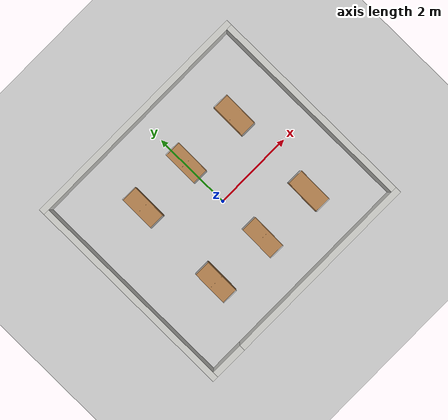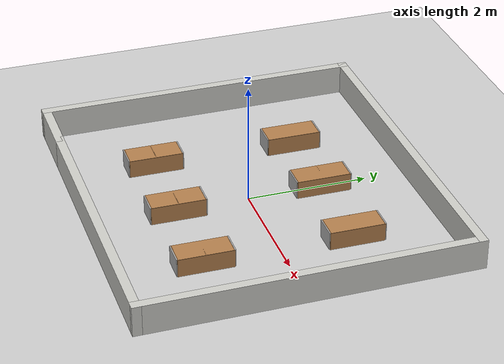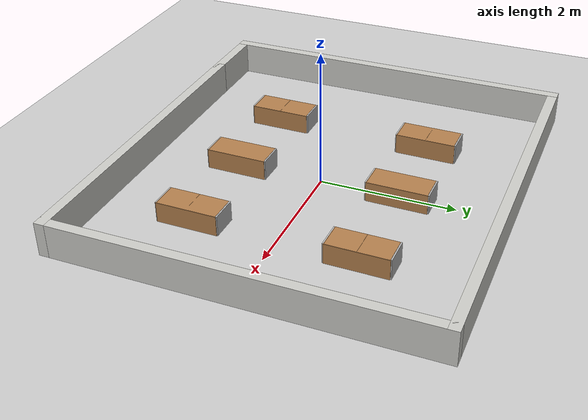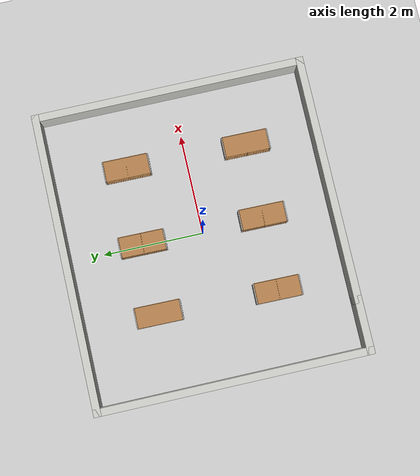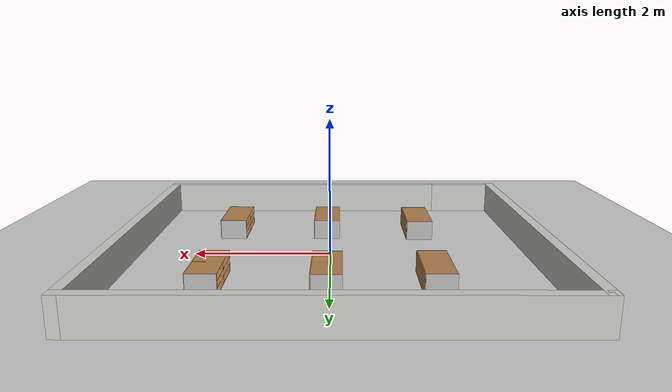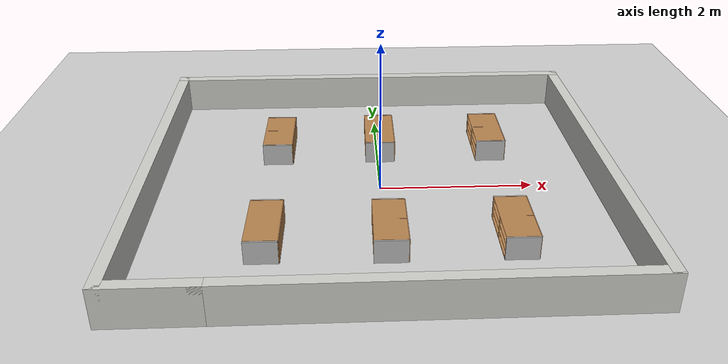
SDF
<sdf version="1.6">
 <world name="default">
  <light name="sun" type="directional">
   <pose>0 0 10 0 -0 0</pose>
   <diffuse>0.8 0.8 0.8 1</diffuse>
   <specular>0.2 0.2 0.2 1</specular>
   <attenuation>
    <range>1000</range>
    <constant>0.9</constant>
    <linear>0.01</linear>
    <quadratic>0.001</quadratic>
   </attenuation>
   <direction>-0.5 0.1 -0.9</direction>
  </light>
  <gravity>0 0 -9.8</gravity>
  <magnetic_field>6e-06 2.3e-05 -4.2e-05</magnetic_field>
  <atmosphere type="adiabatic"/>
  <physics name="default_physics" default="0" type="ode">
   <max_step_size>0.001</max_step_size>
   <real_time_factor>1</real_time_factor>
   <real_time_update_rate>1000</real_time_update_rate>
  </physics>
  <scene><ambient>0.4 0.4 0.4 1</ambient><background>0.7 0.7 0.7 1</background><shadows>1</shadows></scene>
  <spherical_coordinates>
   <surface_model>EARTH_WGS84</surface_model>
   <latitude_deg>0</latitude_deg>
   <longitude_deg>0</longitude_deg>
   <elevation>0</elevation>
   <heading_deg>0</heading_deg>
  </spherical_coordinates>
  <model name="ground_plane">
   <static>1</static>
   <link name="link">
    <collision name="collision">
     <geometry><plane><normal>0 0 1</normal><size>5.5 5.5</size></plane></geometry>
     <surface>
      <contact><collide_bitmask>65535</collide_bitmask></contact>
      <friction><ode><mu>100</mu><mu2>50</mu2></ode></friction>
     </surface>
    </collision>
    <visual name="visual">
     <cast_shadows>0</cast_shadows>
     <geometry><plane><normal>0 0 1</normal><size>5.5 5.5</size></plane></geometry>
     <material><script><uri>file://course.material</uri><name>course</name></script></material>
    </visual>
   </link>
   <pose>0.012778 0.030832 0 0 -0 0</pose>
  </model>
  <model name="Untitled">
   <pose>-0.039 0.053 0 0 -0 0</pose>
   <link name="Wall_10">
    <collision name="Wall_10_Collision">
     <geometry><box><size>5 0.15 0.5</size></box></geometry>
     <pose>0 0 0.25 0 -0 0</pose>
    </collision>
    <visual name="Wall_10_Visual">
     <pose>0 0 0.25 0 -0 0</pose>
     <geometry><box><size>5 0.15 0.5</size></box></geometry>
     <material>
      <script><uri>file://media/materials/scripts/gazebo.material</uri><name>Gazebo/CeilingTiled</name></script>
      <ambient>1 1 1 1</ambient>
     </material>
     <meta><layer>0</layer></meta>
    </visual>
    <pose>0.5 -2.675 0 0 -0 0</pose>
   </link>
   <link name="Wall_12">
    <collision name="Wall_12_Collision">
     <geometry><box><size>6 0.15 0.5</size></box></geometry>
     <pose>0 0 0.25 0 -0 0</pose>
    </collision>
    <visual name="Wall_12_Visual">
     <pose>0 0 0.25 0 -0 0</pose>
     <geometry><box><size>6 0.15 0.5</size></box></geometry>
     <material>
      <script><uri>file://media/materials/scripts/gazebo.material</uri><name>Gazebo/CeilingTiled</name></script>
      <ambient>1 1 1 1</ambient>
     </material>
     <meta><layer>0</layer></meta>
    </visual>
    <pose>0 2.675 0 0 -0 3.14159</pose>
   </link>
   <link name="Wall_13">
    <collision name="Wall_13_Collision">
     <geometry><box><size>5.5 0.15 0.5</size></box></geometry>
     <pose>0 0 0.25 0 -0 0</pose>
    </collision>
    <visual name="Wall_13_Visual">
     <pose>0 0 0.25 0 -0 0</pose>
     <geometry><box><size>5.5 0.15 0.5</size></box></geometry>
     <material>
      <script><uri>file://media/materials/scripts/gazebo.material</uri><name>Gazebo/CeilingTiled</name></script>
      <ambient>1 1 1 1</ambient>
     </material>
     <meta><layer>0</layer></meta>
    </visual>
    <pose>-2.925 0 0 0 0 -1.5708</pose>
   </link>
   <link name="Wall_14">
    <collision name="Wall_14_Collision">
     <geometry><box><size>1.15 0.15 0.5</size></box></geometry>
     <pose>0 0 0.25 0 -0 0</pose>
    </collision>
    <visual name="Wall_14_Visual">
     <pose>0 0 0.25 0 -0 0</pose>
     <geometry><box><size>1.15 0.15 0.5</size></box></geometry>
     <material>
      <script><uri>file://media/materials/scripts/gazebo.material</uri><name>Gazebo/CeilingTiled</name></script>
      <ambient>1 1 1 1</ambient>
     </material>
     <meta><layer>0</layer></meta>
    </visual>
    <pose>-2.425 -2.675 0 0 -0 0</pose>
   </link>
   <link name="Wall_16">
    <collision name="Wall_16_Collision">
     <geometry><box><size>5.5 0.15 0.5</size></box></geometry>
     <pose>0 0 0.25 0 -0 0</pose>
    </collision>
    <visual name="Wall_16_Visual">
     <pose>0 0 0.25 0 -0 0</pose>
     <geometry><box><size>5.5 0.15 0.5</size></box></geometry>
     <material>
      <script><uri>file://media/materials/scripts/gazebo.material</uri><name>Gazebo/CeilingTiled</name></script>
      <ambient>1 1 1 1</ambient>
     </material>
     <meta><layer>0</layer></meta>
    </visual>
    <pose>2.925 0 0 0 0 -1.5708</pose>
   </link>
   <static>1</static>
  </model>
  <model name="bookshelf_i">
   <static>1</static>
   <link name="link">
    <inertial><mass>1</mass></inertial>
    <collision name="back">
     <pose>0 0.01 0.15 0 -0 0</pose>
     <geometry><box><size>0.9 0.01 0.3</size></box></geometry>
    </collision>
    <visual name="visual1">
     <pose>0 0.01 0.15 0 -0 0</pose>
     <geometry><box><size>0.9 0.01 0.3</size></box></geometry>
     <material>
      <script><uri>file://media/materials/scripts/gazebo.material</uri><name>Gazebo/Wood</name></script>
     </material>
    </visual>
    <collision name="left_side">
     <pose>0.455 -0.195 0.15 0 -0 0</pose>
     <geometry><box><size>0.02 0.4 0.3</size></box></geometry>
    </collision>
    <visual name="visual2">
     <pose>0.455 -0.195 0.15 0 -0 0</pose>
     <geometry><box><size>0.02 0.4 0.3</size></box></geometry>
     <material>
      <script>
       <uri>model://bookshelf_i/materials11/scripts</uri>
       <uri>model://bookshelf_i/materials11/textures</uri>
       <name>BookShelf/11</name>
      </script>
     </material>
    </visual>
    <collision name="left_side_inner">
     <pose>0.4425 -0.195 0.15 0 -0 0</pose>
     <geometry><box><size>0.005 0.4 0.3</size></box></geometry>
    </collision>
    <visual name="visual2_inner">
     <pose>0.4425 -0.195 0.15 0 -0 0</pose>
     <geometry><box><size>0.005 0.4 0.3</size></box></geometry>
     <material>
      <script><uri>file://media/materials/scripts/gazebo.material</uri><name>Gazebo/Wood</name></script>
     </material>
    </visual>
    <collision name="right_side">
     <pose>-0.455 -0.195 0.15 0 -0 0</pose>
     <geometry><box><size>0.02 0.4 0.3</size></box></geometry>
    </collision>
    <visual name="visual3">
     <pose>-0.455 -0.195 0.15 0 -0 0</pose>
     <geometry><box><size>0.02 0.4 0.3</size></box></geometry>
     <material>
      <script>
       <uri>model://bookshelf_i/materials11/scripts</uri>
       <uri>model://bookshelf_i/materials11/textures</uri>
       <name>BookShelf/11</name>
      </script>
     </material>
    </visual>
    <collision name="right_side_inner">
     <pose>-0.4425 -0.195 0.15 0 -0 0</pose>
     <geometry><box><size>0.005 0.4 0.3</size></box></geometry>
    </collision>
    <visual name="visual3_inner">
     <pose>-0.4425 -0.195 0.15 0 -0 0</pose>
     <geometry><box><size>0.005 0.4 0.3</size></box></geometry>
     <material>
      <script><uri>file://media/materials/scripts/gazebo.material</uri><name>Gazebo/Wood</name></script>
     </material>
    </visual>
    <collision name="right_side_center">
     <pose>-0 -0.195 0.15 0 -0 0</pose>
     <geometry><box><size>0.005 0.4 0.3</size></box></geometry>
    </collision>
    <visual name="visual3_center">
     <pose>-0 -0.195 0.15 0 -0 0</pose>
     <geometry><box><size>0.005 0.4 0.3</size></box></geometry>
     <material>
      <script><uri>file://media/materials/scripts/gazebo.material</uri><name>Gazebo/Wood</name></script>
     </material>
    </visual>
    <collision name="bottom">
     <pose>0 -0.195 0.0075 0 -0 0</pose>
     <geometry><box><size>0.88 0.4 0.015</size></box></geometry>
    </collision>
    <visual name="visual4">
     <pose>0 -0.195 0.0075 0 -0 0</pose>
     <geometry><box><size>0.88 0.4 0.015</size></box></geometry>
     <material>
      <script><uri>file://media/materials/scripts/gazebo.material</uri><name>Gazebo/Wood</name></script>
     </material>
    </visual>
    <collision name="top">
     <pose>0 -0.195 0.2975 0 -0 0</pose>
     <geometry><box><size>0.88 0.4 0.005</size></box></geometry>
    </collision>
    <visual name="visual5">
     <pose>0 -0.195 0.2975 0 -0 0</pose>
     <geometry><box><size>0.88 0.4 0.005</size></box></geometry>
     <material>
      <script><uri>file://media/materials/scripts/gazebo.material</uri><name>Gazebo/Wood</name></script>
     </material>
    </visual>
    <collision name="low_shelf">
     <pose>0 -0.195 0.1075 0 -0 0</pose>
     <geometry><box><size>0.88 0.4 0.005</size></box></geometry>
    </collision>
    <visual name="visual6">
     <pose>0 -0.195 0.1075 0 -0 0</pose>
     <geometry><box><size>0.88 0.4 0.005</size></box></geometry>
     <material>
      <script><uri>file://media/materials/scripts/gazebo.material</uri><name>Gazebo/Wood</name></script>
     </material>
    </visual>
    <collision name="high_shelf">
     <pose>0 -0.195 0.2 0 -0 0</pose>
     <geometry><box><size>0.88 0.4 0.005</size></box></geometry>
    </collision>
    <visual name="visual7">
     <pose>0 -0.195 0.2 0 -0 0</pose>
     <geometry><box><size>0.88 0.4 0.005</size></box></geometry>
     <material>
      <script><uri>file://media/materials/scripts/gazebo.material</uri><name>Gazebo/Wood</name></script>
     </material>
    </visual>
   </link>
   <pose>0.228048 1.20462 0 0 0 -1.58202</pose>
  </model>
  <model name="bookshelf_i_clone">
   <static>1</static>
   <link name="link">
    <inertial><mass>1</mass></inertial>
    <collision name="back">
     <pose>0 0.01 0.15 0 -0 0</pose>
     <geometry><box><size>0.9 0.01 0.3</size></box></geometry>
    </collision>
    <visual name="visual1">
     <pose>0 0.01 0.15 0 -0 0</pose>
     <geometry><box><size>0.9 0.01 0.3</size></box></geometry>
     <material>
      <script><uri>file://media/materials/scripts/gazebo.material</uri><name>Gazebo/Wood</name></script>
     </material>
    </visual>
    <collision name="left_side">
     <pose>0.455 -0.195 0.15 0 -0 0</pose>
     <geometry><box><size>0.02 0.4 0.3</size></box></geometry>
    </collision>
    <visual name="visual2">
     <pose>0.455 -0.195 0.15 0 -0 0</pose>
     <geometry><box><size>0.02 0.4 0.3</size></box></geometry>
     <material>
      <script>
       <uri>model://bookshelf_i/materials11/scripts</uri>
       <uri>model://bookshelf_i/materials11/textures</uri>
       <name>BookShelf/11</name>
      </script>
     </material>
    </visual>
    <collision name="left_side_inner">
     <pose>0.4425 -0.195 0.15 0 -0 0</pose>
     <geometry><box><size>0.005 0.4 0.3</size></box></geometry>
    </collision>
    <visual name="visual2_inner">
     <pose>0.4425 -0.195 0.15 0 -0 0</pose>
     <geometry><box><size>0.005 0.4 0.3</size></box></geometry>
     <material>
      <script><uri>file://media/materials/scripts/gazebo.material</uri><name>Gazebo/Wood</name></script>
     </material>
    </visual>
    <collision name="right_side">
     <pose>-0.455 -0.195 0.15 0 -0 0</pose>
     <geometry><box><size>0.02 0.4 0.3</size></box></geometry>
    </collision>
    <visual name="visual3">
     <pose>-0.455 -0.195 0.15 0 -0 0</pose>
     <geometry><box><size>0.02 0.4 0.3</size></box></geometry>
     <material>
      <script>
       <uri>model://bookshelf_i/materials11/scripts</uri>
       <uri>model://bookshelf_i/materials11/textures</uri>
       <name>BookShelf/11</name>
      </script>
     </material>
    </visual>
    <collision name="right_side_inner">
     <pose>-0.4425 -0.195 0.15 0 -0 0</pose>
     <geometry><box><size>0.005 0.4 0.3</size></box></geometry>
    </collision>
    <visual name="visual3_inner">
     <pose>-0.4425 -0.195 0.15 0 -0 0</pose>
     <geometry><box><size>0.005 0.4 0.3</size></box></geometry>
     <material>
      <script><uri>file://media/materials/scripts/gazebo.material</uri><name>Gazebo/Wood</name></script>
     </material>
    </visual>
    <collision name="right_side_center">
     <pose>-0 -0.195 0.15 0 -0 0</pose>
     <geometry><box><size>0.005 0.4 0.3</size></box></geometry>
    </collision>
    <visual name="visual3_center">
     <pose>-0 -0.195 0.15 0 -0 0</pose>
     <geometry><box><size>0.005 0.4 0.3</size></box></geometry>
     <material>
      <script><uri>file://media/materials/scripts/gazebo.material</uri><name>Gazebo/Wood</name></script>
     </material>
    </visual>
    <collision name="bottom">
     <pose>0 -0.195 0.0075 0 -0 0</pose>
     <geometry><box><size>0.88 0.4 0.015</size></box></geometry>
    </collision>
    <visual name="visual4">
     <pose>0 -0.195 0.0075 0 -0 0</pose>
     <geometry><box><size>0.88 0.4 0.015</size></box></geometry>
     <material>
      <script><uri>file://media/materials/scripts/gazebo.material</uri><name>Gazebo/Wood</name></script>
     </material>
    </visual>
    <collision name="top">
     <pose>0 -0.195 0.2975 0 -0 0</pose>
     <geometry><box><size>0.88 0.4 0.005</size></box></geometry>
    </collision>
    <visual name="visual5">
     <pose>0 -0.195 0.2975 0 -0 0</pose>
     <geometry><box><size>0.88 0.4 0.005</size></box></geometry>
     <material>
      <script><uri>file://media/materials/scripts/gazebo.material</uri><name>Gazebo/Wood</name></script>
     </material>
    </visual>
    <collision name="low_shelf">
     <pose>0 -0.195 0.1075 0 -0 0</pose>
     <geometry><box><size>0.88 0.4 0.005</size></box></geometry>
    </collision>
    <visual name="visual6">
     <pose>0 -0.195 0.1075 0 -0 0</pose>
     <geometry><box><size>0.88 0.4 0.005</size></box></geometry>
     <material>
      <script><uri>file://media/materials/scripts/gazebo.material</uri><name>Gazebo/Wood</name></script>
     </material>
    </visual>
    <collision name="high_shelf">
     <pose>0 -0.195 0.2 0 -0 0</pose>
     <geometry><box><size>0.88 0.4 0.005</size></box></geometry>
    </collision>
    <visual name="visual7">
     <pose>0 -0.195 0.2 0 -0 0</pose>
     <geometry><box><size>0.88 0.4 0.005</size></box></geometry>
     <material>
      <script><uri>file://media/materials/scripts/gazebo.material</uri><name>Gazebo/Wood</name></script>
     </material>
    </visual>
   </link>
   <pose>1.76939 1.18666 0 0 0 -1.58202</pose>
  </model>
  <model name="bookshelf_i_clone_0">
   <static>1</static>
   <link name="link">
    <inertial><mass>1</mass></inertial>
    <collision name="back">
     <pose>0 0.01 0.15 0 -0 0</pose>
     <geometry><box><size>0.9 0.01 0.3</size></box></geometry>
    </collision>
    <visual name="visual1">
     <pose>0 0.01 0.15 0 -0 0</pose>
     <geometry><box><size>0.9 0.01 0.3</size></box></geometry>
     <material>
      <script><uri>file://media/materials/scripts/gazebo.material</uri><name>Gazebo/Wood</name></script>
     </material>
    </visual>
    <collision name="left_side">
     <pose>0.455 -0.195 0.15 0 -0 0</pose>
     <geometry><box><size>0.02 0.4 0.3</size></box></geometry>
    </collision>
    <visual name="visual2">
     <pose>0.455 -0.195 0.15 0 -0 0</pose>
     <geometry><box><size>0.02 0.4 0.3</size></box></geometry>
     <material>
      <script>
       <uri>model://bookshelf_i/materials11/scripts</uri>
       <uri>model://bookshelf_i/materials11/textures</uri>
       <name>BookShelf/11</name>
      </script>
     </material>
    </visual>
    <collision name="left_side_inner">
     <pose>0.4425 -0.195 0.15 0 -0 0</pose>
     <geometry><box><size>0.005 0.4 0.3</size></box></geometry>
    </collision>
    <visual name="visual2_inner">
     <pose>0.4425 -0.195 0.15 0 -0 0</pose>
     <geometry><box><size>0.005 0.4 0.3</size></box></geometry>
     <material>
      <script><uri>file://media/materials/scripts/gazebo.material</uri><name>Gazebo/Wood</name></script>
     </material>
    </visual>
    <collision name="right_side">
     <pose>-0.455 -0.195 0.15 0 -0 0</pose>
     <geometry><box><size>0.02 0.4 0.3</size></box></geometry>
    </collision>
    <visual name="visual3">
     <pose>-0.455 -0.195 0.15 0 -0 0</pose>
     <geometry><box><size>0.02 0.4 0.3</size></box></geometry>
     <material>
      <script>
       <uri>model://bookshelf_i/materials11/scripts</uri>
       <uri>model://bookshelf_i/materials11/textures</uri>
       <name>BookShelf/11</name>
      </script>
     </material>
    </visual>
    <collision name="right_side_inner">
     <pose>-0.4425 -0.195 0.15 0 -0 0</pose>
     <geometry><box><size>0.005 0.4 0.3</size></box></geometry>
    </collision>
    <visual name="visual3_inner">
     <pose>-0.4425 -0.195 0.15 0 -0 0</pose>
     <geometry><box><size>0.005 0.4 0.3</size></box></geometry>
     <material>
      <script><uri>file://media/materials/scripts/gazebo.material</uri><name>Gazebo/Wood</name></script>
     </material>
    </visual>
    <collision name="right_side_center">
     <pose>-0 -0.195 0.15 0 -0 0</pose>
     <geometry><box><size>0.005 0.4 0.3</size></box></geometry>
    </collision>
    <visual name="visual3_center">
     <pose>-0 -0.195 0.15 0 -0 0</pose>
     <geometry><box><size>0.005 0.4 0.3</size></box></geometry>
     <material>
      <script><uri>file://media/materials/scripts/gazebo.material</uri><name>Gazebo/Wood</name></script>
     </material>
    </visual>
    <collision name="bottom">
     <pose>0 -0.195 0.0075 0 -0 0</pose>
     <geometry><box><size>0.88 0.4 0.015</size></box></geometry>
    </collision>
    <visual name="visual4">
     <pose>0 -0.195 0.0075 0 -0 0</pose>
     <geometry><box><size>0.88 0.4 0.015</size></box></geometry>
     <material>
      <script><uri>file://media/materials/scripts/gazebo.material</uri><name>Gazebo/Wood</name></script>
     </material>
    </visual>
    <collision name="top">
     <pose>0 -0.195 0.2975 0 -0 0</pose>
     <geometry><box><size>0.88 0.4 0.005</size></box></geometry>
    </collision>
    <visual name="visual5">
     <pose>0 -0.195 0.2975 0 -0 0</pose>
     <geometry><box><size>0.88 0.4 0.005</size></box></geometry>
     <material>
      <script><uri>file://media/materials/scripts/gazebo.material</uri><name>Gazebo/Wood</name></script>
     </material>
    </visual>
    <collision name="low_shelf">
     <pose>0 -0.195 0.1075 0 -0 0</pose>
     <geometry><box><size>0.88 0.4 0.005</size></box></geometry>
    </collision>
    <visual name="visual6">
     <pose>0 -0.195 0.1075 0 -0 0</pose>
     <geometry><box><size>0.88 0.4 0.005</size></box></geometry>
     <material>
      <script><uri>file://media/materials/scripts/gazebo.material</uri><name>Gazebo/Wood</name></script>
     </material>
    </visual>
    <collision name="high_shelf">
     <pose>0 -0.195 0.2 0 -0 0</pose>
     <geometry><box><size>0.88 0.4 0.005</size></box></geometry>
    </collision>
    <visual name="visual7">
     <pose>0 -0.195 0.2 0 -0 0</pose>
     <geometry><box><size>0.88 0.4 0.005</size></box></geometry>
     <material>
      <script><uri>file://media/materials/scripts/gazebo.material</uri><name>Gazebo/Wood</name></script>
     </material>
    </visual>
   </link>
   <pose>-1.18674 1.18875 0 0 0 -1.58202</pose>
  </model>
  <model name="bookshelf_i_clone_0_clone">
   <static>1</static>
   <link name="link">
    <inertial><mass>1</mass></inertial>
    <collision name="back">
     <pose>0 0.01 0.15 0 -0 0</pose>
     <geometry><box><size>0.9 0.01 0.3</size></box></geometry>
    </collision>
    <visual name="visual1">
     <pose>0 0.01 0.15 0 -0 0</pose>
     <geometry><box><size>0.9 0.01 0.3</size></box></geometry>
     <material>
      <script><uri>file://media/materials/scripts/gazebo.material</uri><name>Gazebo/Wood</name></script>
     </material>
    </visual>
    <collision name="left_side">
     <pose>0.455 -0.195 0.15 0 -0 0</pose>
     <geometry><box><size>0.02 0.4 0.3</size></box></geometry>
    </collision>
    <visual name="visual2">
     <pose>0.455 -0.195 0.15 0 -0 0</pose>
     <geometry><box><size>0.02 0.4 0.3</size></box></geometry>
     <material>
      <script>
       <uri>model://bookshelf_i/materials11/scripts</uri>
       <uri>model://bookshelf_i/materials11/textures</uri>
       <name>BookShelf/11</name>
      </script>
     </material>
    </visual>
    <collision name="left_side_inner">
     <pose>0.4425 -0.195 0.15 0 -0 0</pose>
     <geometry><box><size>0.005 0.4 0.3</size></box></geometry>
    </collision>
    <visual name="visual2_inner">
     <pose>0.4425 -0.195 0.15 0 -0 0</pose>
     <geometry><box><size>0.005 0.4 0.3</size></box></geometry>
     <material>
      <script><uri>file://media/materials/scripts/gazebo.material</uri><name>Gazebo/Wood</name></script>
     </material>
    </visual>
    <collision name="right_side">
     <pose>-0.455 -0.195 0.15 0 -0 0</pose>
     <geometry><box><size>0.02 0.4 0.3</size></box></geometry>
    </collision>
    <visual name="visual3">
     <pose>-0.455 -0.195 0.15 0 -0 0</pose>
     <geometry><box><size>0.02 0.4 0.3</size></box></geometry>
     <material>
      <script>
       <uri>model://bookshelf_i/materials11/scripts</uri>
       <uri>model://bookshelf_i/materials11/textures</uri>
       <name>BookShelf/11</name>
      </script>
     </material>
    </visual>
    <collision name="right_side_inner">
     <pose>-0.4425 -0.195 0.15 0 -0 0</pose>
     <geometry><box><size>0.005 0.4 0.3</size></box></geometry>
    </collision>
    <visual name="visual3_inner">
     <pose>-0.4425 -0.195 0.15 0 -0 0</pose>
     <geometry><box><size>0.005 0.4 0.3</size></box></geometry>
     <material>
      <script><uri>file://media/materials/scripts/gazebo.material</uri><name>Gazebo/Wood</name></script>
     </material>
    </visual>
    <collision name="right_side_center">
     <pose>-0 -0.195 0.15 0 -0 0</pose>
     <geometry><box><size>0.005 0.4 0.3</size></box></geometry>
    </collision>
    <visual name="visual3_center">
     <pose>-0 -0.195 0.15 0 -0 0</pose>
     <geometry><box><size>0.005 0.4 0.3</size></box></geometry>
     <material>
      <script><uri>file://media/materials/scripts/gazebo.material</uri><name>Gazebo/Wood</name></script>
     </material>
    </visual>
    <collision name="bottom">
     <pose>0 -0.195 0.0075 0 -0 0</pose>
     <geometry><box><size>0.88 0.4 0.015</size></box></geometry>
    </collision>
    <visual name="visual4">
     <pose>0 -0.195 0.0075 0 -0 0</pose>
     <geometry><box><size>0.88 0.4 0.015</size></box></geometry>
     <material>
      <script><uri>file://media/materials/scripts/gazebo.material</uri><name>Gazebo/Wood</name></script>
     </material>
    </visual>
    <collision name="top">
     <pose>0 -0.195 0.2975 0 -0 0</pose>
     <geometry><box><size>0.88 0.4 0.005</size></box></geometry>
    </collision>
    <visual name="visual5">
     <pose>0 -0.195 0.2975 0 -0 0</pose>
     <geometry><box><size>0.88 0.4 0.005</size></box></geometry>
     <material>
      <script><uri>file://media/materials/scripts/gazebo.material</uri><name>Gazebo/Wood</name></script>
     </material>
    </visual>
    <collision name="low_shelf">
     <pose>0 -0.195 0.1075 0 -0 0</pose>
     <geometry><box><size>0.88 0.4 0.005</size></box></geometry>
    </collision>
    <visual name="visual6">
     <pose>0 -0.195 0.1075 0 -0 0</pose>
     <geometry><box><size>0.88 0.4 0.005</size></box></geometry>
     <material>
      <script><uri>file://media/materials/scripts/gazebo.material</uri><name>Gazebo/Wood</name></script>
     </material>
    </visual>
    <collision name="high_shelf">
     <pose>0 -0.195 0.2 0 -0 0</pose>
     <geometry><box><size>0.88 0.4 0.005</size></box></geometry>
    </collision>
    <visual name="visual7">
     <pose>0 -0.195 0.2 0 -0 0</pose>
     <geometry><box><size>0.88 0.4 0.005</size></box></geometry>
     <material>
      <script><uri>file://media/materials/scripts/gazebo.material</uri><name>Gazebo/Wood</name></script>
     </material>
    </visual>
   </link>
   <pose>-1.23027 -1.18279 0 0 0 -1.58202</pose>
  </model>
  <model name="bookshelf_i_clone_0_clone_0">
   <static>1</static>
   <link name="link">
    <inertial><mass>1</mass></inertial>
    <collision name="back">
     <pose>0 0.01 0.15 0 -0 0</pose>
     <geometry><box><size>0.9 0.01 0.3</size></box></geometry>
    </collision>
    <visual name="visual1">
     <pose>0 0.01 0.15 0 -0 0</pose>
     <geometry><box><size>0.9 0.01 0.3</size></box></geometry>
     <material>
      <script><uri>file://media/materials/scripts/gazebo.material</uri><name>Gazebo/Wood</name></script>
     </material>
    </visual>
    <collision name="left_side">
     <pose>0.455 -0.195 0.15 0 -0 0</pose>
     <geometry><box><size>0.02 0.4 0.3</size></box></geometry>
    </collision>
    <visual name="visual2">
     <pose>0.455 -0.195 0.15 0 -0 0</pose>
     <geometry><box><size>0.02 0.4 0.3</size></box></geometry>
     <material>
      <script>
       <uri>model://bookshelf_i/materials11/scripts</uri>
       <uri>model://bookshelf_i/materials11/textures</uri>
       <name>BookShelf/11</name>
      </script>
     </material>
    </visual>
    <collision name="left_side_inner">
     <pose>0.4425 -0.195 0.15 0 -0 0</pose>
     <geometry><box><size>0.005 0.4 0.3</size></box></geometry>
    </collision>
    <visual name="visual2_inner">
     <pose>0.4425 -0.195 0.15 0 -0 0</pose>
     <geometry><box><size>0.005 0.4 0.3</size></box></geometry>
     <material>
      <script><uri>file://media/materials/scripts/gazebo.material</uri><name>Gazebo/Wood</name></script>
     </material>
    </visual>
    <collision name="right_side">
     <pose>-0.455 -0.195 0.15 0 -0 0</pose>
     <geometry><box><size>0.02 0.4 0.3</size></box></geometry>
    </collision>
    <visual name="visual3">
     <pose>-0.455 -0.195 0.15 0 -0 0</pose>
     <geometry><box><size>0.02 0.4 0.3</size></box></geometry>
     <material>
      <script>
       <uri>model://bookshelf_i/materials11/scripts</uri>
       <uri>model://bookshelf_i/materials11/textures</uri>
       <name>BookShelf/11</name>
      </script>
     </material>
    </visual>
    <collision name="right_side_inner">
     <pose>-0.4425 -0.195 0.15 0 -0 0</pose>
     <geometry><box><size>0.005 0.4 0.3</size></box></geometry>
    </collision>
    <visual name="visual3_inner">
     <pose>-0.4425 -0.195 0.15 0 -0 0</pose>
     <geometry><box><size>0.005 0.4 0.3</size></box></geometry>
     <material>
      <script><uri>file://media/materials/scripts/gazebo.material</uri><name>Gazebo/Wood</name></script>
     </material>
    </visual>
    <collision name="right_side_center">
     <pose>-0 -0.195 0.15 0 -0 0</pose>
     <geometry><box><size>0.005 0.4 0.3</size></box></geometry>
    </collision>
    <visual name="visual3_center">
     <pose>-0 -0.195 0.15 0 -0 0</pose>
     <geometry><box><size>0.005 0.4 0.3</size></box></geometry>
     <material>
      <script><uri>file://media/materials/scripts/gazebo.material</uri><name>Gazebo/Wood</name></script>
     </material>
    </visual>
    <collision name="bottom">
     <pose>0 -0.195 0.0075 0 -0 0</pose>
     <geometry><box><size>0.88 0.4 0.015</size></box></geometry>
    </collision>
    <visual name="visual4">
     <pose>0 -0.195 0.0075 0 -0 0</pose>
     <geometry><box><size>0.88 0.4 0.015</size></box></geometry>
     <material>
      <script><uri>file://media/materials/scripts/gazebo.material</uri><name>Gazebo/Wood</name></script>
     </material>
    </visual>
    <collision name="top">
     <pose>0 -0.195 0.2975 0 -0 0</pose>
     <geometry><box><size>0.88 0.4 0.005</size></box></geometry>
    </collision>
    <visual name="visual5">
     <pose>0 -0.195 0.2975 0 -0 0</pose>
     <geometry><box><size>0.88 0.4 0.005</size></box></geometry>
     <material>
      <script><uri>file://media/materials/scripts/gazebo.material</uri><name>Gazebo/Wood</name></script>
     </material>
    </visual>
    <collision name="low_shelf">
     <pose>0 -0.195 0.1075 0 -0 0</pose>
     <geometry><box><size>0.88 0.4 0.005</size></box></geometry>
    </collision>
    <visual name="visual6">
     <pose>0 -0.195 0.1075 0 -0 0</pose>
     <geometry><box><size>0.88 0.4 0.005</size></box></geometry>
     <material>
      <script><uri>file://media/materials/scripts/gazebo.material</uri><name>Gazebo/Wood</name></script>
     </material>
    </visual>
    <collision name="high_shelf">
     <pose>0 -0.195 0.2 0 -0 0</pose>
     <geometry><box><size>0.88 0.4 0.005</size></box></geometry>
    </collision>
    <visual name="visual7">
     <pose>0 -0.195 0.2 0 -0 0</pose>
     <geometry><box><size>0.88 0.4 0.005</size></box></geometry>
     <material>
      <script><uri>file://media/materials/scripts/gazebo.material</uri><name>Gazebo/Wood</name></script>
     </material>
    </visual>
   </link>
   <pose>0.242051 -1.22485 0 0 0 -1.58202</pose>
  </model>
  <model name="bookshelf_i_clone_0_clone_1">
   <static>1</static>
   <link name="link">
    <inertial><mass>1</mass></inertial>
    <collision name="back">
     <pose>0 0.01 0.15 0 -0 0</pose>
     <geometry><box><size>0.9 0.01 0.3</size></box></geometry>
    </collision>
    <visual name="visual1">
     <pose>0 0.01 0.15 0 -0 0</pose>
     <geometry><box><size>0.9 0.01 0.3</size></box></geometry>
     <material>
      <script><uri>file://media/materials/scripts/gazebo.material</uri><name>Gazebo/Wood</name></script>
     </material>
    </visual>
    <collision name="left_side">
     <pose>0.455 -0.195 0.15 0 -0 0</pose>
     <geometry><box><size>0.02 0.4 0.3</size></box></geometry>
    </collision>
    <visual name="visual2">
     <pose>0.455 -0.195 0.15 0 -0 0</pose>
     <geometry><box><size>0.02 0.4 0.3</size></box></geometry>
     <material>
      <script>
       <uri>model://bookshelf_i/materials11/scripts</uri>
       <uri>model://bookshelf_i/materials11/textures</uri>
       <name>BookShelf/11</name>
      </script>
     </material>
    </visual>
    <collision name="left_side_inner">
     <pose>0.4425 -0.195 0.15 0 -0 0</pose>
     <geometry><box><size>0.005 0.4 0.3</size></box></geometry>
    </collision>
    <visual name="visual2_inner">
     <pose>0.4425 -0.195 0.15 0 -0 0</pose>
     <geometry><box><size>0.005 0.4 0.3</size></box></geometry>
     <material>
      <script><uri>file://media/materials/scripts/gazebo.material</uri><name>Gazebo/Wood</name></script>
     </material>
    </visual>
    <collision name="right_side">
     <pose>-0.455 -0.195 0.15 0 -0 0</pose>
     <geometry><box><size>0.02 0.4 0.3</size></box></geometry>
    </collision>
    <visual name="visual3">
     <pose>-0.455 -0.195 0.15 0 -0 0</pose>
     <geometry><box><size>0.02 0.4 0.3</size></box></geometry>
     <material>
      <script>
       <uri>model://bookshelf_i/materials11/scripts</uri>
       <uri>model://bookshelf_i/materials11/textures</uri>
       <name>BookShelf/11</name>
      </script>
     </material>
    </visual>
    <collision name="right_side_inner">
     <pose>-0.4425 -0.195 0.15 0 -0 0</pose>
     <geometry><box><size>0.005 0.4 0.3</size></box></geometry>
    </collision>
    <visual name="visual3_inner">
     <pose>-0.4425 -0.195 0.15 0 -0 0</pose>
     <geometry><box><size>0.005 0.4 0.3</size></box></geometry>
     <material>
      <script><uri>file://media/materials/scripts/gazebo.material</uri><name>Gazebo/Wood</name></script>
     </material>
    </visual>
    <collision name="right_side_center">
     <pose>-0 -0.195 0.15 0 -0 0</pose>
     <geometry><box><size>0.005 0.4 0.3</size></box></geometry>
    </collision>
    <visual name="visual3_center">
     <pose>-0 -0.195 0.15 0 -0 0</pose>
     <geometry><box><size>0.005 0.4 0.3</size></box></geometry>
     <material>
      <script><uri>file://media/materials/scripts/gazebo.material</uri><name>Gazebo/Wood</name></script>
     </material>
    </visual>
    <collision name="bottom">
     <pose>0 -0.195 0.0075 0 -0 0</pose>
     <geometry><box><size>0.88 0.4 0.015</size></box></geometry>
    </collision>
    <visual name="visual4">
     <pose>0 -0.195 0.0075 0 -0 0</pose>
     <geometry><box><size>0.88 0.4 0.015</size></box></geometry>
     <material>
      <script><uri>file://media/materials/scripts/gazebo.material</uri><name>Gazebo/Wood</name></script>
     </material>
    </visual>
    <collision name="top">
     <pose>0 -0.195 0.2975 0 -0 0</pose>
     <geometry><box><size>0.88 0.4 0.005</size></box></geometry>
    </collision>
    <visual name="visual5">
     <pose>0 -0.195 0.2975 0 -0 0</pose>
     <geometry><box><size>0.88 0.4 0.005</size></box></geometry>
     <material>
      <script><uri>file://media/materials/scripts/gazebo.material</uri><name>Gazebo/Wood</name></script>
     </material>
    </visual>
    <collision name="low_shelf">
     <pose>0 -0.195 0.1075 0 -0 0</pose>
     <geometry><box><size>0.88 0.4 0.005</size></box></geometry>
    </collision>
    <visual name="visual6">
     <pose>0 -0.195 0.1075 0 -0 0</pose>
     <geometry><box><size>0.88 0.4 0.005</size></box></geometry>
     <material>
      <script><uri>file://media/materials/scripts/gazebo.material</uri><name>Gazebo/Wood</name></script>
     </material>
    </visual>
    <collision name="high_shelf">
     <pose>0 -0.195 0.2 0 -0 0</pose>
     <geometry><box><size>0.88 0.4 0.005</size></box></geometry>
    </collision>
    <visual name="visual7">
     <pose>0 -0.195 0.2 0 -0 0</pose>
     <geometry><box><size>0.88 0.4 0.005</size></box></geometry>
     <material>
      <script><uri>file://media/materials/scripts/gazebo.material</uri><name>Gazebo/Wood</name></script>
     </material>
    </visual>
   </link>
   <pose>1.73428 -1.22739 0 0 0 -1.58202</pose>
  </model>
 </world>
</sdf>
